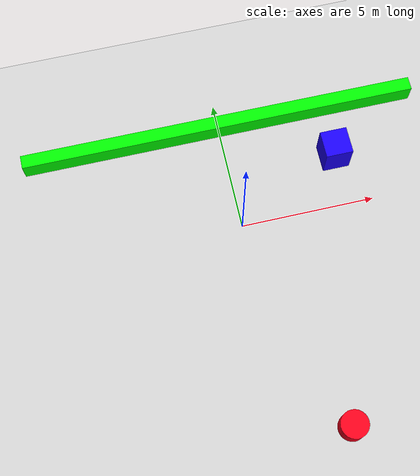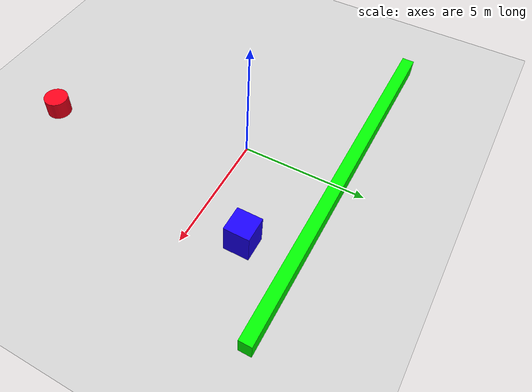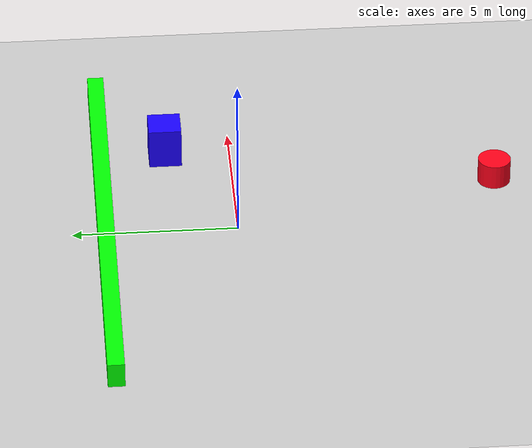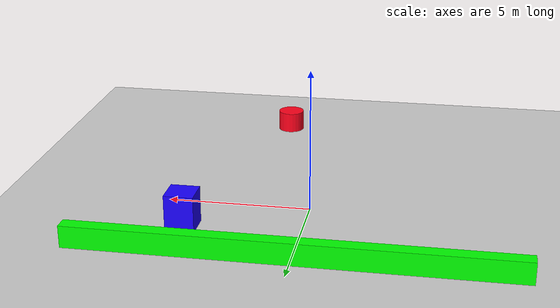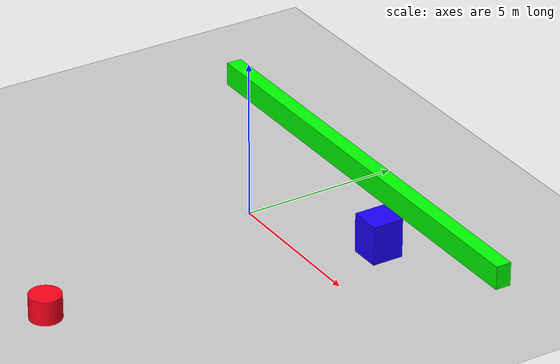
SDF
<?xml version="1.0" ?>
<sdf version="1.9">
  <world name="Moving_robot">
    <physics name="1ms" type="ignored">
      <max_step_size>0.001</max_step_size>
      <real_time_factor>1.0</real_time_factor>
    </physics>
    <plugin filename="gz-sim-physics-system" name="gz::sim::systems::Physics">
    </plugin>
    <plugin filename="gz-sim-user-commands-system" name="gz::sim::systems::UserCommands">
    </plugin>
    <plugin filename="gz-sim-scene-broadcaster-system" name="gz::sim::systems::SceneBroadcaster">
    </plugin>
    <plugin filename="gz-sim-sensors-system" name="gz::sim::systems::Sensors">
      <render_engine>ogre2</render_engine>
    </plugin>

    <!-- light -->
    <light type="directional" name="sun">
      <cast_shadows>true</cast_shadows>
      <pose>0 0 10 0 0 0</pose>
      <diffuse>1 1 1 1</diffuse>
      <specular>0.5 0.5 0.5 1</specular>
      <attenuation>
        <range>1000</range>
        <constant>0.9</constant>
        <linear>0.01</linear>
        <quadratic>0.001</quadratic>
      </attenuation>
      <direction>-0.5 0.1 -0.9</direction>
    </light>

    <!-- plane -->
    <model name="ground_plane">
      <static>true</static>
      <link name="link">
        <collision name="collision">
          <geometry>
            <plane>
              <normal>0 0 1</normal>
              <size>100 100</size>
            </plane>
          </geometry>
          <surface>
            <friction>
              <ode>
                <mu>50</mu>
              </ode>
              <bullet>
                <friction>1</friction>
                <friction2>1</friction2>
                <rolling_friction>0.1</rolling_friction>
              </bullet>
            </friction>
          </surface>
        </collision>
        <visual name="visual">
          <geometry>
            <plane>
              <normal>0 0 1</normal>
              <size>100 100</size>
            </plane>
          </geometry>
          <material>
            <ambient>0.8 0.8 0.8 1</ambient>
            <diffuse>0.8 0.8 0.8 1</diffuse>
            <specular>0.8 0.8 0.8 1</specular>
          </material>
        </visual>
      </link>
    </model>

    <!-- box obstacle -->
    <model name="wall">
      <static>true</static>
      <pose>0 4 0.25 0 0 0</pose>
      <link name="link">
        <visual name="visual">
          <geometry>
            <box>
              <size>15 0.5 1</size>
            </box>
          </geometry>
          <material>
            <ambient>0.0 1.0 0.0 1</ambient>
            <diffuse>0.0 1.0 0.0 1</diffuse>
            <specular>0.0 1.0 0.0 1</specular>
          </material>
        </visual>
        <collision name='collision'>
          <geometry>
            <box>
              <size>15 0.5 1</size>
            </box>
          </geometry>
        </collision>
      </link>
    </model>

    <model name="box_obstacle">
      <static>true</static>
      <pose>4 2 0.25 0 0 0</pose>
      <link name="link">
        <visual name="visual">
          <geometry>
            <box>
              <size>1 1 2</size>
            </box>
          </geometry>
          <material>
            <ambient>0.1 0.0 1.0 1</ambient>
            <diffuse>0.1 0.0 1.0 1</diffuse>
            <specular>0.1 0.0 1.0 1</specular>
          </material>
        </visual>
        <collision name='collision'>
          <geometry>
            <box>
              <size>1 1 2</size>
            </box>
          </geometry>
        </collision>
      </link>
    </model>

    <model name="cylinder_obstacle">
      <static>true</static>
      <pose>2 -8 0.25 0 0 0</pose>
      <link name="link">
        <visual name="visual">
          <geometry>
            <cylinder>
              <radius>0.5</radius>
              <length>1.0</length>
            </cylinder>
          </geometry>
          <material>
            <ambient>1 0.0 0.1 1</ambient>
            <diffuse>1 0.0 0.1 1</diffuse>
            <specular>1 0.0 0.1 1</specular>
          </material>
        </visual>
        <collision name='collision'>
          <geometry>
            <cylinder>
              <radius>0.5</radius>
              <length>1.0</length>
            </cylinder>
          </geometry>
        </collision>
      </link>
    </model>

    <!-- Moving Left-->
    <plugin filename="gz-sim-triggered-publisher-system" name="gz::sim::systems::TriggeredPublisher">
      <input type="gz.msgs.Int32" topic="/keyboard/keypress">
        <match field="data">16777234</match>
      </input>
      <output type="gz.msgs.Twist" topic="/cmd_vel">
                linear: {x: 0.0}, angular: {z: -0.5}
      </output>
    </plugin>
    <!-- Moving Forward-->
    <plugin filename="gz-sim-triggered-publisher-system" name="gz::sim::systems::TriggeredPublisher">
      <input type="gz.msgs.Int32" topic="/keyboard/keypress">
        <match field="data">16777235</match>
      </input>
      <output type="gz.msgs.Twist" topic="/cmd_vel">
                linear: {x: -0.5}, angular: {z: 0.0}
      </output>
    </plugin>
    <!-- Moving Right-->
    <plugin filename="gz-sim-triggered-publisher-system" name="gz::sim::systems::TriggeredPublisher">
      <input type="gz.msgs.Int32" topic="/keyboard/keypress">
        <match field="data">16777236</match>
      </input>
      <output type="gz.msgs.Twist" topic="/cmd_vel">
                linear: {x: 0.0}, angular: {z: 0.5}
      </output>
    </plugin>
    <!-- Moving Backward-->
    <plugin filename="gz-sim-triggered-publisher-system" name="gz::sim::systems::TriggeredPublisher">
      <input type="gz.msgs.Int32" topic="/keyboard/keypress">
        <match field="data">16777237</match>
      </input>
      <output type="gz.msgs.Twist" topic="/cmd_vel">
                linear: {x: 0.5}, angular: {z: 0.0}
      </output>
    </plugin>
  </world>
</sdf>
